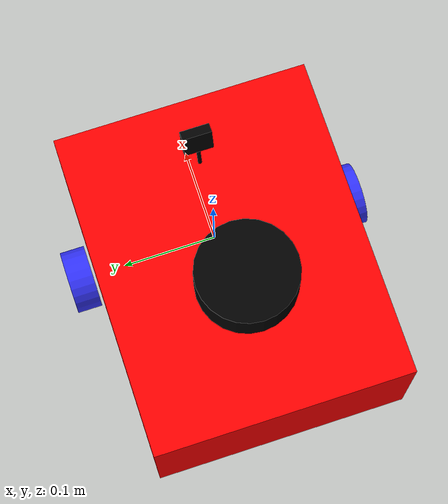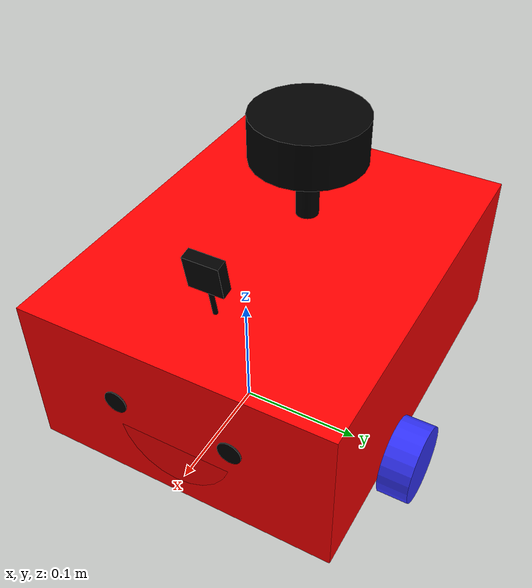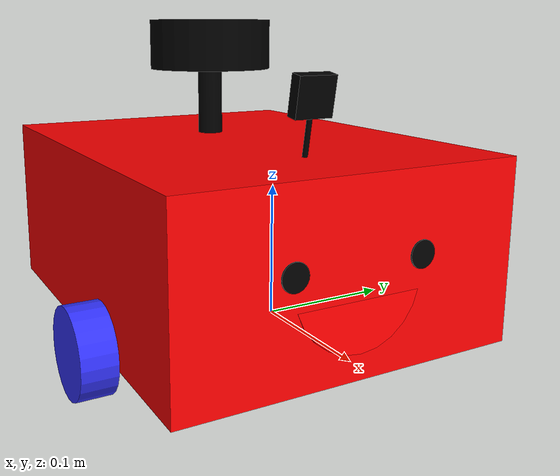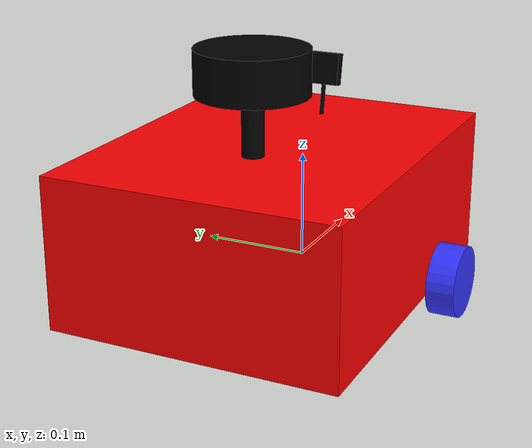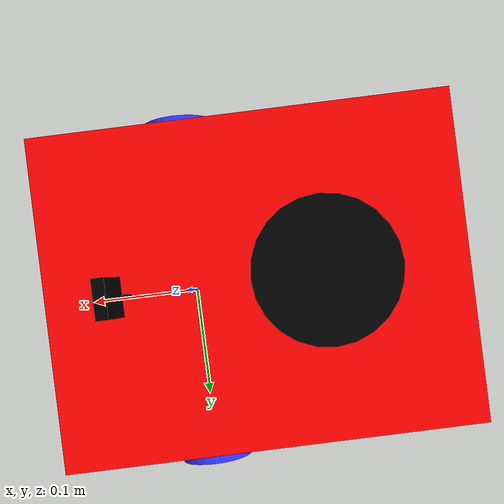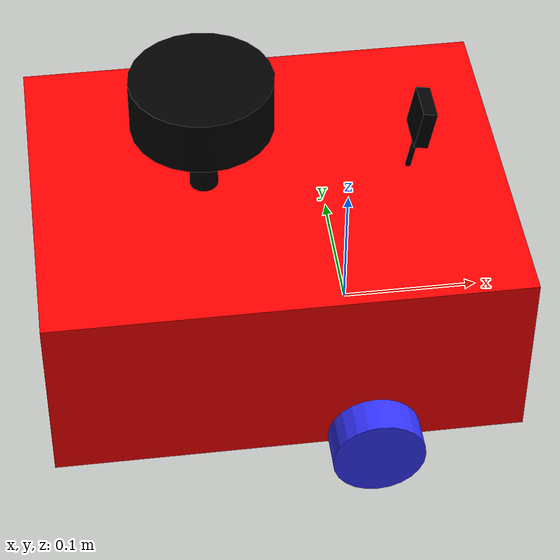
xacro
<?xml version="1.0"?>
<robot xmlns:xacro="http://www.ros.org/wiki/xacro" name="gnanagamya">

    <xacro:arg name="use_ros2_control" default="true"/>
    <xacro:arg name="sim_mode"         default="true"/>

    <!-- Core robot body: chassis, drive wheels, caster, materials -->
    <xacro:include filename="robot_core.xacro"/>

    <!-- Drive controller — ros2_control or raw Gazebo plugin -->
    <xacro:if value="$(arg use_ros2_control)">
        <xacro:include filename="ros2_control.xacro"/>
    </xacro:if>
    <xacro:unless value="$(arg use_ros2_control)">
        <xacro:include filename="gazebo_control.xacro"/>
    </xacro:unless>

    <!-- Sensors -->
    <xacro:include filename="lidar.xacro"/>
    <xacro:include filename="camera.xacro"/>
    <!-- Swap to depth camera by uncommenting the line below and commenting camera.xacro above -->

    <!-- Decorative face elements -->
    <xacro:include filename="face.xacro"/>

</robot>

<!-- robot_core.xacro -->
<robot xmlns:xacro="http://www.ros.org/wiki/xacro" >

    <xacro:include filename="inertial_macros.xacro"/>

    <!-- ═══════════════════════════════════════════════
         PHYSICAL DIMENSIONS & MASS PROPERTIES
         ═══════════════════════════════════════════════ -->
    <xacro:property name="chassis_length" value="0.335"/>
    <xacro:property name="chassis_width"  value="0.265"/>
    <xacro:property name="chassis_height" value="0.138"/>
    <xacro:property name="chassis_mass"   value="1.0"/>

    <xacro:property name="wheel_radius"    value="0.033"/>
    <xacro:property name="wheel_thickness" value="0.026"/>
    <xacro:property name="wheel_mass"      value="0.05"/>
    <xacro:property name="wheel_offset_x"  value="0.226"/>
    <xacro:property name="wheel_offset_y"  value="0.1485"/>
    <xacro:property name="wheel_offset_z"  value="0.01"/>

    <xacro:property name="caster_wheel_radius"   value="0.01"/>
    <xacro:property name="caster_wheel_mass"     value="0.01"/>
    <xacro:property name="caster_wheel_offset_x" value="0.075"/>
    <xacro:property name="caster_wheel_offset_z" value="${wheel_offset_z - wheel_radius + caster_wheel_radius}"/>

    <!-- ═══════════════════════════════════════════════
         MATERIALS
         ═══════════════════════════════════════════════ -->
    <material name="white">  <color rgba="1 1 1 1"/>      </material>
    <material name="orange"> <color rgba="1 0.3 0.1 1"/>  </material>
    <material name="blue">   <color rgba="0.2 0.2 1 1"/>  </material>
    <material name="black">  <color rgba="0 0 0 1"/>      </material>
    <material name="red">    <color rgba="1 0 0 1"/>      </material>

    <!-- ═══════════════════════════════════════════════
         BASE LINK  (origin of the robot)
         ═══════════════════════════════════════════════ -->
    <link name="base_link"/>

    <!-- BASE FOOTPRINT -->
    <joint name="base_footprint_joint" type="fixed">
        <parent link="base_link"/>
        <child  link="base_footprint"/>
        <origin xyz="0 0 0" rpy="0 0 0"/>
    </joint>
    <link name="base_footprint"/>

    <!-- ═══════════════════════════════════════════════
         CHASSIS
         ═══════════════════════════════════════════════ -->
    <joint name="chassis_joint" type="fixed">
        <parent link="base_link"/>
        <child  link="chassis"/>
        <origin xyz="${-wheel_offset_x} 0 ${-wheel_offset_z}"/>
    </joint>

    <link name="chassis">
        <visual>
            <origin xyz="${chassis_length/2} 0 ${chassis_height/2}"/>
            <geometry>
                <box size="${chassis_length} ${chassis_width} ${chassis_height}"/>
            </geometry>
            <material name="red"/>
        </visual>
        <collision>
            <origin xyz="${chassis_length/2} 0 ${chassis_height/2}"/>
            <geometry>
                <box size="${chassis_length} ${chassis_width} ${chassis_height}"/>
            </geometry>
        </collision>
        <xacro:inertial_box mass="0.5" x="${chassis_length}" y="${chassis_width}" z="${chassis_height}">
            <origin xyz="${chassis_length/2} 0 ${chassis_height/2}" rpy="0 0 0"/>
        </xacro:inertial_box>
    </link>

    <gazebo reference="chassis">
        <material>Gazebo/Red</material>
    </gazebo>

    <!-- ═══════════════════════════════════════════════
         LEFT WHEEL
         ═══════════════════════════════════════════════ -->
    <joint name="left_wheel_joint" type="continuous">
        <parent link="base_link"/>
        <child  link="left_wheel"/>
        <origin xyz="0 ${wheel_offset_y} 0" rpy="-${pi/2} 0 0"/>
        <axis xyz="0 0 1"/>
    </joint>

    <link name="left_wheel">
        <visual>
            <geometry>
                <cylinder radius="${wheel_radius}" length="${wheel_thickness}"/>
            </geometry>
            <material name="blue"/>
        </visual>
        <collision>
            <geometry>
                <sphere radius="${wheel_radius}"/>
            </geometry>
        </collision>
        <xacro:inertial_cylinder mass="${wheel_mass}" length="${wheel_thickness}" radius="${wheel_radius}">
            <origin xyz="0 0 0" rpy="0 0 0"/>
        </xacro:inertial_cylinder>
    </link>

    <gazebo reference="left_wheel">
        <material>Gazebo/Blue</material>
    </gazebo>

    <!-- ═══════════════════════════════════════════════
         RIGHT WHEEL
         ═══════════════════════════════════════════════ -->
    <joint name="right_wheel_joint" type="continuous">
        <parent link="base_link"/>
        <child  link="right_wheel"/>
        <origin xyz="0 ${-wheel_offset_y} 0" rpy="${pi/2} 0 0"/>
        <axis xyz="0 0 -1"/>
    </joint>

    <link name="right_wheel">
        <visual>
            <geometry>
                <cylinder radius="${wheel_radius}" length="${wheel_thickness}"/>
            </geometry>
            <material name="blue"/>
        </visual>
        <collision>
            <geometry>
                <sphere radius="${wheel_radius}"/>
            </geometry>
        </collision>
        <xacro:inertial_cylinder mass="${wheel_mass}" length="${wheel_thickness}" radius="${wheel_radius}">
            <origin xyz="0 0 0" rpy="0 0 0"/>
        </xacro:inertial_cylinder>
    </link>

    <gazebo reference="right_wheel">
        <material>Gazebo/Blue</material>
    </gazebo>

    <!-- ═══════════════════════════════════════════════
         CASTER WHEEL  (front passive wheel)
         ═══════════════════════════════════════════════ -->
    <joint name="caster_wheel_joint" type="fixed">
        <parent link="chassis"/>
        <child  link="caster_wheel"/>
        <origin xyz="${caster_wheel_offset_x} 0 ${caster_wheel_offset_z}"/>
    </joint>

    <link name="caster_wheel">
        <visual>
            <geometry>
                <sphere radius="${caster_wheel_radius}"/>
            </geometry>
            <material name="white"/>
        </visual>
        <collision>
            <geometry>
                <sphere radius="${caster_wheel_radius}"/>
            </geometry>
        </collision>
        <xacro:inertial_sphere mass="${caster_wheel_mass}" radius="${caster_wheel_radius}">
            <origin xyz="0 0 0" rpy="0 0 0"/>
        </xacro:inertial_sphere>
    </link>

    <gazebo reference="caster_wheel">
        <material>Gazebo/White</material>
        <!-- Low friction so caster rolls freely -->
        <mu1 value="0.001"/>
        <mu2 value="0.001"/>
    </gazebo>

</robot>

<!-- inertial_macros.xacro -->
<robot xmlns:xacro="http://www.ros.org/wiki/xacro" >

    <!-- SPHERE inertia: I = (2/5) * m * r^2 for all axes -->
    <xacro:macro name="inertial_sphere" params="mass radius *origin">
        <inertial>
            <xacro:insert_block name="origin"/>
            <mass value="${mass}"/>
            <inertia
                ixx="${(2/5) * mass * (radius*radius)}" ixy="0.0" ixz="0.0"
                iyy="${(2/5) * mass * (radius*radius)}" iyz="0.0"
                izz="${(2/5) * mass * (radius*radius)}"/>
        </inertial>
    </xacro:macro>

    <!-- BOX inertia: standard rectangular cuboid formulas -->
    <xacro:macro name="inertial_box" params="mass x y z *origin">
        <inertial>
            <xacro:insert_block name="origin"/>
            <mass value="${mass}"/>
            <inertia
                ixx="${(1/12) * mass * (y*y + z*z)}" ixy="0.0" ixz="0.0"
                iyy="${(1/12) * mass * (x*x + z*z)}" iyz="0.0"
                izz="${(1/12) * mass * (x*x + y*y)}"/>
        </inertial>
    </xacro:macro>

    <!-- CYLINDER inertia: axis of symmetry along z -->
    <xacro:macro name="inertial_cylinder" params="mass length radius *origin">
        <inertial>
            <xacro:insert_block name="origin"/>
            <mass value="${mass}"/>
            <inertia
                ixx="${(1/12) * mass * (3*radius*radius + length*length)}" ixy="0.0" ixz="0.0"
                iyy="${(1/12) * mass * (3*radius*radius + length*length)}" iyz="0.0"
                izz="${(1/2)  * mass * (radius*radius)}"/>
        </inertial>
    </xacro:macro>

</robot>

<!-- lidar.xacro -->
<robot xmlns:xacro="http://www.ros.org/wiki/xacro" >

    <joint name="laser_joint" type="fixed">
        <parent link="chassis"/>
        <child  link="laser_frame"/>
        <!-- Centred on chassis, raised above the camera -->
        <origin xyz="0.122 0 0.212" rpy="0 0 0"/>
    </joint>

    <link name="laser_frame">
        <!-- LiDAR puck body -->
        <visual>
            <geometry>
                <cylinder radius="0.05" length="0.04"/>
            </geometry>
            <material name="black"/>
        </visual>
        <!-- Mounting pole -->
        <visual>
            <origin xyz="0 0 -0.05"/>
            <geometry>
                <cylinder radius="0.01" length="0.1"/>
            </geometry>
            <material name="black"/>
        </visual>
        <collision>
            <geometry>
                <cylinder radius="0.05" length="0.04"/>
            </geometry>
        </collision>
        <xacro:inertial_cylinder mass="0.1" length="0.04" radius="0.05">
            <origin xyz="0 0 0" rpy="0 0 0"/>
        </xacro:inertial_cylinder>
    </link>

    <gazebo reference="laser_frame">
        <material>Gazebo/Black</material>
        <sensor name="laser" type="gpu_lidar">
            <pose>0 0 0 0 0 0</pose>
            <visualize>false</visualize>
            <update_rate>10</update_rate>
            <lidar>
                <scan>
                    <horizontal>
                        <samples>360</samples>
                        <min_angle>-3.14</min_angle>
                        <max_angle>3.14</max_angle>
                    </horizontal>
                </scan>
                <range>
                    <min>0.3</min>
                    <max>12</max>
                </range>
            </lidar>
            <topic>scan</topic>
            <gz_frame_id>laser_frame</gz_frame_id>
        </sensor>
    </gazebo>

</robot>

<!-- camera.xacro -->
<robot xmlns:xacro="http://www.ros.org/wiki/xacro" >

    <joint name="camera_joint" type="fixed">
        <parent link="chassis"/>
        <child  link="camera_link"/>
        <!-- x=0.276 puts it near the front face; z=0.181 is above chassis top -->
        <origin xyz="0.276 0 0.181" rpy="0 0.18 0"/>
    </joint>

    <link name="camera_link">
        <!-- Camera body -->
        <visual>
            <geometry>
                <box size="0.010 0.03 0.03"/>
            </geometry>
            <material name="black"/>
        </visual>
        <!-- Mount stalk -->
        <visual>
            <origin xyz="0 0 -0.05"/>
            <geometry>
                <cylinder radius="0.002" length="0.1"/>
            </geometry>
            <material name="black"/>
        </visual>
    </link>

    <!-- Optical frame: ROS convention rotates the camera_link into optical axes
         (x-right, y-down, z-forward) -->
    <joint name="camera_optical_joint" type="fixed">
        <parent link="camera_link"/>
        <child  link="camera_link_optical"/>
        <origin xyz="0 0 0" rpy="${-pi/2} 0 ${-pi/2}"/>
    </joint>
    <link name="camera_link_optical"/>

    <gazebo reference="camera_link">
        <material>Gazebo/Black</material>
        <sensor name="camera" type="camera">
            <pose>0 0 0 0 0 0</pose>
            <visualize>true</visualize>
            <update_rate>10</update_rate>
            <camera>
                <camera_info_topic>camera/camera_info</camera_info_topic>
                <horizontal_fov>1.089</horizontal_fov>
                <image>
                    <format>R8G8B8</format>
                    <width>640</width>
                    <height>480</height>
                </image>
                <clip>
                    <near>0.05</near>
                    <far>8.0</far>
                </clip>
            </camera>
            <topic>camera/image_raw</topic>
            <gz_frame_id>camera_link_optical</gz_frame_id>
        </sensor>
    </gazebo>

</robot>

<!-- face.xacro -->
<robot xmlns:xacro="http://www.ros.org/wiki/xacro" >

    <joint name="face_joint" type="fixed">
        <parent link="chassis"/>
        <child  link="face_link"/>
        <!-- Positioned at the very front face of the chassis, mid-height -->
        <origin xyz="${chassis_length} 0 ${chassis_height/2}" rpy="0 0 0"/>
    </joint>

    <link name="face_link">

        <!-- LEFT EYE -->
        <visual>
            <origin xyz="0 0.05 0.01" rpy="0 ${pi/2} 0"/>
            <geometry>
                <cylinder radius="0.01" length="0.002"/>
            </geometry>
            <material name="black"/>
        </visual>

        <!-- RIGHT EYE -->
        <visual>
            <origin xyz="0 -0.05 0.01" rpy="0 ${pi/2} 0"/>
            <geometry>
                <cylinder radius="0.01" length="0.002"/>
            </geometry>
            <material name="black"/>
        </visual>

        <!-- MOUTH (wide red cylinder, slightly rotated for a curved appearance) -->
        <visual>
            <origin xyz="-0.011 0 -0.00" rpy="0 1.5 0"/>
            <geometry>
                <cylinder radius="0.05" length="0.02"/>
            </geometry>
            <material name="red"/>
        </visual>

    </link>

    <gazebo reference="face_link">
        <material>Gazebo/Black</material>
    </gazebo>

</robot>
